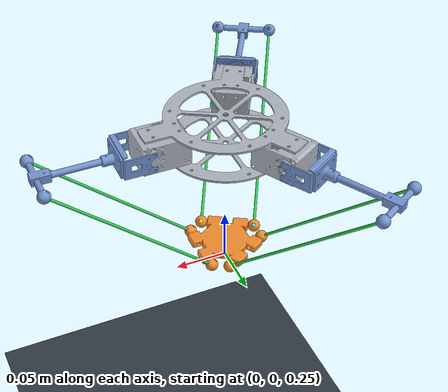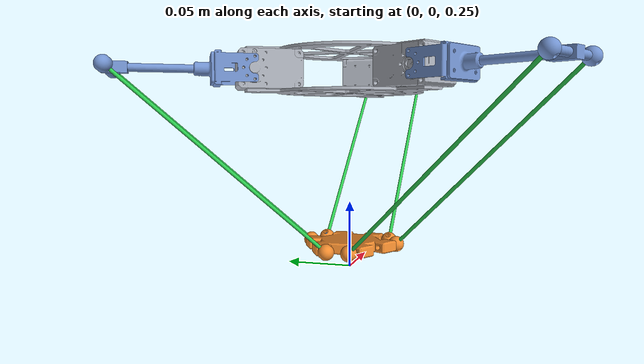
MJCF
<mujoco model="Delta_scene">
  <include file="Delta.xml" />
  <statistic center="-0.02 0 0.08" extent="0.6" />
  <visual>
    <headlight ambient="0.25 0.25 0.25" diffuse="0.7 0.7 0.7" specular="0.2 0.2 0.2" />
    <rgba haze="0.15 0.2 0.25 1" />
    <quality shadowsize="4096" />
  </visual>
  <asset>
    <texture name="grid" type="2d" builtin="checker" width="512" height="512" rgb1="0.24 0.28 0.32" rgb2="0.14 0.17 0.2" />
    <material name="ground_mat" texture="grid" texrepeat="4 4" texuniform="true" reflectance="0.2" />
  </asset>
  <worldbody>
    <light name="sun" directional="true" pos="0 0 3" dir="0 0 -1" diffuse="0.9 0.9 0.9" specular="0.2 0.2 0.2" />
    <light name="fill" pos="1.0 -1.2 1.5" dir="-1 1 -1" diffuse="0.35 0.35 0.35" />
    <camera name="overview" pos="0.55 -0.55 0.35" xyaxes="0.707 0.707 0 -0.331 0.331 0.883" />
    <geom name="ground" type="plane" size="2 2 0.1" material="ground_mat" condim="3" contype="5" conaffinity="3" />
  </worldbody>
</mujoco>

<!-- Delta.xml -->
<mujoco model="Delta_Manipulator">
  <compiler angle="radian" coordinate="local" inertiafromgeom="auto" />
  <option timestep="0.002" gravity="0 0 -9.81" />
  <asset>
    <material name="delta_base_mat" rgba="0.68 0.7 0.74 1" specular="0.25" shininess="0.15" />
    <material name="delta_elbow_mat" rgba="0.45 0.58 0.82 1" specular="0.2" shininess="0.1" />
    <material name="delta_platform_mat" rgba="0.95 0.55 0.18 1" specular="0.25" shininess="0.12" />
    <material name="delta_link_mat" rgba="0.18 0.82 0.32 1" specular="0.2" shininess="0.1" />
    <mesh name="delta_base_board_1" file="Delta_Base/Delta_Manipulator - Delta_Base-1 Delta_board-1.STL" scale="1 1 1" />
    <mesh name="delta_base_board_2" file="Delta_Base/Delta_Manipulator - Delta_Base-1 Delta_board-2.STL" scale="1 1 1" />
    <mesh name="delta_base_motor_1" file="Delta_Base/Delta_Manipulator - Delta_Base-1 Delta_motor-1.STL" scale="1 1 1" />
    <mesh name="delta_base_motor_2" file="Delta_Base/Delta_Manipulator - Delta_Base-1 Delta_motor-2.STL" scale="1 1 1" />
    <mesh name="delta_base_motor_3" file="Delta_Base/Delta_Manipulator - Delta_Base-1 Delta_motor-3.STL" scale="1 1 1" />
    <mesh name="delta_elbow_connector_1" file="Delta_Elbow-3/Delta_Manipulator - Delta_Elbow-3 Delta_Elbow_connector-1.STL" scale="1 1 1" />
    <mesh name="delta_elbow_frame_base_1" file="Delta_Elbow-3/Delta_Manipulator - Delta_Elbow-3 Delta_Frame_Base-1.STL" scale="1 1 1" />
    <mesh name="delta_upper_arm_1" file="Delta_Elbow-3/Delta_Manipulator - Delta_Elbow-3 Delta_Upper_Arm-1.STL" scale="1 1 1" />
    <mesh name="delta_elbow_balljoint_1" file="Delta_Elbow-3/Delta_Manipulator - Delta_Elbow-3 Delta_balljoint-1.STL" scale="1 1 1" />
    <mesh name="delta_elbow_balljoint_2" file="Delta_Elbow-3/Delta_Manipulator - Delta_Elbow-3 Delta_balljoint-2.STL" scale="1 1 1" />
    <mesh name="delta_motor_frame_1" file="Delta_Elbow-3/Delta_Manipulator - Delta_Elbow-3 Delta_motor_frame-1.STL" scale="1 1 1" />
    <mesh name="delta2_elbow_connector_1" file="Delta_Elbow-2/Delta_Manipulator - Delta_Elbow-2 Delta_Elbow_connector-1.STL" scale="1 1 1" />
    <mesh name="delta2_frame_base_1" file="Delta_Elbow-2/Delta_Manipulator - Delta_Elbow-2 Delta_Frame_Base-1.STL" scale="1 1 1" />
    <mesh name="delta2_upper_arm_1" file="Delta_Elbow-2/Delta_Manipulator - Delta_Elbow-2 Delta_Upper_Arm-1.STL" scale="1 1 1" />
    <mesh name="delta2_balljoint_1" file="Delta_Elbow-2/Delta_Manipulator - Delta_Elbow-2 Delta_balljoint-1.STL" scale="1 1 1" />
    <mesh name="delta2_balljoint_2" file="Delta_Elbow-2/Delta_Manipulator - Delta_Elbow-2 Delta_balljoint-2.STL" scale="1 1 1" />
    <mesh name="delta2_motor_frame_1" file="Delta_Elbow-2/Delta_Manipulator - Delta_Elbow-2 Delta_motor_frame-1.STL" scale="1 1 1" />
    <mesh name="delta1_elbow_connector_1" file="Delta_Elbow-1/Delta_Manipulator - Delta_Elbow-1 Delta_Elbow_connector-1.STL" scale="1 1 1" />
    <mesh name="delta1_frame_base_1" file="Delta_Elbow-1/Delta_Manipulator - Delta_Elbow-1 Delta_Frame_Base-1.STL" scale="1 1 1" />
    <mesh name="delta1_upper_arm_1" file="Delta_Elbow-1/Delta_Manipulator - Delta_Elbow-1 Delta_Upper_Arm-1.STL" scale="1 1 1" />
    <mesh name="delta1_balljoint_1" file="Delta_Elbow-1/Delta_Manipulator - Delta_Elbow-1 Delta_balljoint-1.STL" scale="1 1 1" />
    <mesh name="delta1_balljoint_2" file="Delta_Elbow-1/Delta_Manipulator - Delta_Elbow-1 Delta_balljoint-2.STL" scale="1 1 1" />
    <mesh name="delta1_motor_frame_1" file="Delta_Elbow-1/Delta_Manipulator - Delta_Elbow-1 Delta_motor_frame-1.STL" scale="1 1 1" />
    <mesh name="delta_end_1" file="Delta_End_platform/Delta_Manipulator - Delta_End_platform-1 Delta_End-1.STL" scale="1 1 1" />
    <mesh name="delta_end_balljoint_1" file="Delta_End_platform/Delta_Manipulator - Delta_End_platform-1 Delta_balljoint-1.STL" scale="1 1 1" />
    <mesh name="delta_end_balljoint_2" file="Delta_End_platform/Delta_Manipulator - Delta_End_platform-1 Delta_balljoint-2.STL" scale="1 1 1" />
    <mesh name="delta_end_balljoint_3" file="Delta_End_platform/Delta_Manipulator - Delta_End_platform-1 Delta_balljoint-3.STL" scale="1 1 1" />
    <mesh name="delta_end_balljoint_4" file="Delta_End_platform/Delta_Manipulator - Delta_End_platform-1 Delta_balljoint-4.STL" scale="1 1 1" />
    <mesh name="delta_end_balljoint_5" file="Delta_End_platform/Delta_Manipulator - Delta_End_platform-1 Delta_balljoint-5.STL" scale="1 1 1" />
    <mesh name="delta_end_balljoint_6" file="Delta_End_platform/Delta_Manipulator - Delta_End_platform-1 Delta_balljoint-6.STL" scale="1 1 1" />
    <mesh name="delta_lower_arm_1" file="Delta_Lower_Arm-1/Delta_Manipulator - Delta_Lower_Arm-1.STL" scale="1 1 1" />
    <mesh name="delta_lower_arm_2" file="Delta_Lower_Arm-2/Delta_Manipulator - Delta_Lower_Arm-2.STL" scale="1 1 1" />
    <mesh name="delta_lower_arm_4" file="Delta_Lower_Arm-4/Delta_Manipulator - Delta_Lower_Arm-4.STL" scale="1 1 1" />
    <mesh name="delta_lower_arm_5" file="Delta_Lower_Arm-5/Delta_Manipulator - Delta_Lower_Arm-5.STL" scale="1 1 1" />
    <mesh name="delta_lower_arm_6" file="Delta_Lower_Arm-6/Delta_Manipulator - Delta_Lower_Arm-6.STL" scale="1 1 1" />
  </asset>
  <default>
    <geom type="mesh" contype="2" conaffinity="4" friction="0.8 0.1 0.1" solref="0.005 1" solimp="0.9 0.95 0.001" />
    <default class="base">
      <geom material="delta_base_mat" group="0" rgba="0.68 0.7 0.74 1" />
    </default>
    <default class="elbow">
      <geom material="delta_elbow_mat" group="0" rgba="0.45 0.58 0.82 1" />
    </default>
    <default class="platform">
      <geom material="delta_platform_mat" group="0" rgba="0.95 0.55 0.18 1" />
    </default>
    <default class="link">
      <geom material="delta_link_mat" group="0" rgba="0.18 0.82 0.32 1" />
    </default>
  </default>
  <worldbody>
    <body name="delta" pos="0 0 0.4">
      <body name="delta_base">
        <geom class="base" name="delta_base_board_1" mesh="delta_base_board_1" mass="0.040" />
        <geom class="base" name="delta_base_board_2" mesh="delta_base_board_2" mass="0.040" />
        <geom class="base" name="delta_base_motor_1" mesh="delta_base_motor_1" mass="0.035" />
        <geom class="base" name="delta_base_motor_2" mesh="delta_base_motor_2" mass="0.035" />
        <geom class="base" name="delta_base_motor_3" mesh="delta_base_motor_3" mass="0.035" />
        <body name="delta_elbow_2_mount" euler="0 0 2.0943951023931953">
          <body name="delta_elbow_2" pos="0.0745 0 0">
            <joint name="delta_elbow_2_hinge" type="hinge" pos="0 0 0" axis="0 -1 0" damping="0.01" limited="true" range="-0.5235987755982988 1.5707963267948966" ref="0" />
            <geom class="elbow" name="delta2_elbow_connector_1" mesh="delta2_elbow_connector_1" mass="0.008" />
            <geom class="elbow" name="delta2_frame_base_1" mesh="delta2_frame_base_1" mass="0.010" />
            <geom class="elbow" name="delta2_upper_arm_1" mesh="delta2_upper_arm_1" mass="0.020" />
            <geom class="elbow" name="delta2_balljoint_1" mesh="delta2_balljoint_1" mass="0.003" />
            <geom class="elbow" name="delta2_balljoint_2" mesh="delta2_balljoint_2" mass="0.003" />
            <geom class="elbow" name="delta2_motor_frame_1" mesh="delta2_motor_frame_1" mass="0.009" />
            <body name="delta2_lower_arm_4" pos="0.1 -0.0262 0">
              <joint name="delta2_lower_arm_4_ball" type="ball" pos="0 0 0" damping="0.01" />
              <geom class="link" name="delta2_lower_arm_4" mesh="delta_lower_arm_4" mass="0.025" />
              <site name="delta2_lower_arm_4_tip" pos="-0.1495 0 -0.1328" size="0.003" rgba="1 0.7 0.2 1" />
            </body>
            <body name="delta2_lower_arm_5" pos="0.1 0.0262 0">
              <joint name="delta2_lower_arm_5_ball" type="ball" pos="0 0 0" damping="0.01" />
              <geom class="link" name="delta2_lower_arm_5" mesh="delta_lower_arm_5" mass="0.025" />
              <site name="delta2_lower_arm_5_tip" pos="-0.1495 0 -0.1328" size="0.003" rgba="1 0.3 0.8 1" />
            </body>
          </body>
        </body>
        <body name="delta_elbow_1_mount" euler="0 0 -2.0943951023931953">
          <body name="delta_elbow_1" pos="0.0745 0 0">
            <joint name="delta_elbow_1_hinge" type="hinge" pos="0 0 0" axis="0 -1 0" damping="0.01" limited="true" range="-0.5235987755982988 1.5707963267948966" ref="0" />
            <geom class="elbow" name="delta1_elbow_connector_1" mesh="delta1_elbow_connector_1" mass="0.008" />
            <geom class="elbow" name="delta1_frame_base_1" mesh="delta1_frame_base_1" mass="0.010" />
            <geom class="elbow" name="delta1_upper_arm_1" mesh="delta1_upper_arm_1" mass="0.020" />
            <geom class="elbow" name="delta1_balljoint_1" mesh="delta1_balljoint_1" mass="0.003" />
            <geom class="elbow" name="delta1_balljoint_2" mesh="delta1_balljoint_2" mass="0.003" />
            <geom class="elbow" name="delta1_motor_frame_1" mesh="delta1_motor_frame_1" mass="0.009" />
            <body name="delta1_lower_arm_2" pos="0.1 -0.0262 0">
              <joint name="delta1_lower_arm_2_ball" type="ball" pos="0 0 0" damping="0.01" />
              <geom class="link" name="delta1_lower_arm_2" mesh="delta_lower_arm_2" mass="0.025" />
              <site name="delta1_lower_arm_2_tip" pos="-0.1495 0 -0.1328" size="0.003" rgba="0.2 1 1 1" />
            </body>
            <body name="delta1_lower_arm_1" pos="0.1 0.0262 0">
              <joint name="delta1_lower_arm_1_ball" type="ball" pos="0 0 0" damping="0.01" />
              <geom class="link" name="delta1_lower_arm_1" mesh="delta_lower_arm_1" mass="0.025" />
              <site name="delta1_lower_arm_1_tip" pos="-0.1495 0 -0.1328" size="0.003" rgba="1 1 0.2 1" />
            </body>
          </body>
        </body>
        <body name="delta_elbow_3" pos="0.0745 0 0">
          <joint name="delta_elbow_3_hinge" type="hinge" pos="0 0 0" axis="0 -1 0" damping="0.01" limited="true" range="-0.5235987755982988 1.5707963267948966" ref="0" />
          <geom class="elbow" name="delta_elbow_connector_1" mesh="delta_elbow_connector_1" mass="0.008" />
          <geom class="elbow" name="delta_elbow_frame_base_1" mesh="delta_elbow_frame_base_1" mass="0.010" />
          <geom class="elbow" name="delta_upper_arm_1" mesh="delta_upper_arm_1" mass="0.020" />
          <geom class="elbow" name="delta_elbow_balljoint_1" mesh="delta_elbow_balljoint_1" mass="0.003" />
          <geom class="elbow" name="delta_elbow_balljoint_2" mesh="delta_elbow_balljoint_2" mass="0.003" />
          <geom class="elbow" name="delta_motor_frame_1" mesh="delta_motor_frame_1" mass="0.009" />
          <body name="delta_lower_arm_6" pos="0.1 -0.0262 0">
            <joint name="delta_lower_arm_6_ball" type="ball" pos="0 0 0" damping="0.01" />
            <geom class="link" name="delta_lower_arm_6" mesh="delta_lower_arm_6" mass="0.025" />
            <body name="delta_end_platform" pos="-0.1495 0 -0.1328">
              <joint name="delta_end_platform_ball" type="ball" pos="0 0 0" damping="0.01" />
              <geom class="platform" name="delta_end_1" mesh="delta_end_1" mass="0.038" />
              <geom class="platform" name="delta_end_balljoint_1" mesh="delta_end_balljoint_1" mass="0.003" />
              <geom class="platform" name="delta_end_balljoint_2" mesh="delta_end_balljoint_2" mass="0.003" />
              <geom class="platform" name="delta_end_balljoint_3" mesh="delta_end_balljoint_3" mass="0.003" />
              <geom class="platform" name="delta_end_balljoint_4" mesh="delta_end_balljoint_4" mass="0.003" />
              <geom class="platform" name="delta_end_balljoint_5" mesh="delta_end_balljoint_5" mass="0.003" />
              <geom class="platform" name="delta_end_balljoint_6" mesh="delta_end_balljoint_6" mass="0.003" />
              <site name="delta_end_platform_joint_ypos" pos="0 0.0524 0" size="0.003" rgba="0.2 0.6 1 1" />
              <site name="delta_end_platform_joint_2_site1" pos="-0.0148 0.0609 0" size="0.003" rgba="1 0.7 0.2 1" />
              <site name="delta_end_platform_joint_2_site2" pos="-0.0601 0.0347 0" size="0.003" rgba="1 0.3 0.8 1" />
              <site name="delta_end_platform_joint_1_site1" pos="-0.0601 0.0177 0" size="0.003" rgba="0.2 1 1 1" />
              <site name="delta_end_platform_joint_1_site2" pos="-0.0148 -0.0085 0" size="0.003" rgba="1 1 0.2 1" />
            </body>
          </body>
          <body name="delta_lower_arm_5" pos="0.1 0.0262 0">
            <joint name="delta_lower_arm_5_ball" type="ball" pos="0 0 0" damping="0.01" />
            <geom class="link" name="delta_lower_arm_5" mesh="delta_lower_arm_5" mass="0.025" />
            <site name="delta_lower_arm_5_tip" pos="-0.1495 0 -0.1328" size="0.003" rgba="1 0.2 0.2 1" />
          </body>
        </body>
      </body>
    </body>
  </worldbody>
  <equality>
    <connect name="delta_lower_arm_5_to_end_platform" site1="delta_lower_arm_5_tip" site2="delta_end_platform_joint_ypos" />
    <connect name="delta2_lower_arm_4_to_end_platform" site1="delta2_lower_arm_4_tip" site2="delta_end_platform_joint_2_site1" />
    <connect name="delta2_lower_arm_5_to_end_platform" site1="delta2_lower_arm_5_tip" site2="delta_end_platform_joint_2_site2" />
    <connect name="delta1_lower_arm_2_to_end_platform" site1="delta1_lower_arm_2_tip" site2="delta_end_platform_joint_1_site1" />
    <connect name="delta1_lower_arm_1_to_end_platform" site1="delta1_lower_arm_1_tip" site2="delta_end_platform_joint_1_site2" />
  </equality>
  <actuator>
    <position name="delta_elbow_1_pos" joint="delta_elbow_1_hinge" kp="20" ctrlrange="-0.5235987755982988 1.5707963267948966" ctrllimited="true" />
    <position name="delta_elbow_2_pos" joint="delta_elbow_2_hinge" kp="20" ctrlrange="-0.5235987755982988 1.5707963267948966" ctrllimited="true" />
    <position name="delta_elbow_3_pos" joint="delta_elbow_3_hinge" kp="20" ctrlrange="-0.5235987755982988 1.5707963267948966" ctrllimited="true" />
  </actuator>
</mujoco>
